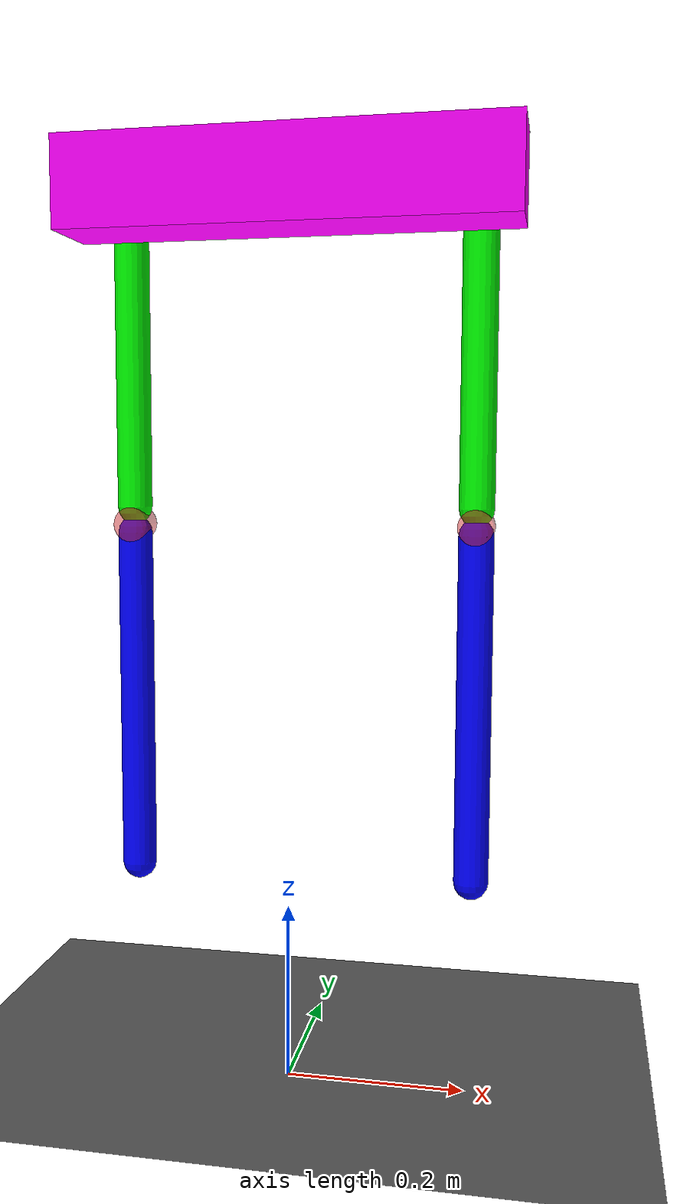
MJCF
<?xml version='1.0' encoding='UTF-8'?>
<mujoco>

    <option gravity="0 0 -9.81"/>

    <asset>
        <texture type="skybox" builtin="gradient" rgb1="1 1 1" rgb2="0.5 0.5 0.5" width="265" height="256"/>
        <texture name="grid" type="2d" builtin="checker" rgb1="0.1 0.1 0.1" rgb2="0.6 0.6 0.6" width="300" height="300"/>
        <material name="grid" texture="grid" texrepeat="10 10" reflectance="0.2"/>
        <material name="base" rgba="1 0 1 1" shininess="0.5" specular="1"/>
        <material name="link1" rgba="0 1 0 1" shininess="0.5" specular="1"/>
        <material name="link2" rgba="0 0 1 1" shininess="0.5" specular="1"/>
        <material name="joint_shape" rgba="0.89 0.14 0.16 0.5" shininess="0.5" specular="1"/>
    </asset>

    <worldbody>
        <light pos="0 0 10"/>
        <geom type="plane" size="10 10 0.1" material="grid" friction="1 0.1 0.1"/>

        <camera name="side view" pos="0.1 -1.5 1.0" euler="90 0 0" fovy="60"/>
        <camera name="upper view" pos="0 0 1.5" euler="0 0 0"/>

        <body name="base" pos="0 0 1">
            <joint name="slider" type="slide" axis="0 0 1" range="-1 5"/>
            <geom name="base" type="box" size="0.25 0.05 0.05" mass="0.5" material="base" contype="1" conaffinity="1"/>
            <site name="box_s"/>

            <body name="link1" pos="0.2 0.07  0">
                <joint name="A" type="hinge" axis="0 1 0"  range="-80 80" damping="0.1"/>
                <geom name="joint_shape1" type="cylinder" size="0.02 0.02" material="joint_shape" pos="0 0 0" euler="90 0 0" contype="0" />
                <geom name="link1" type="capsule" size="0.02 0.175" material="link1" pos="0 0  -0.175" contype="1" conaffinity="1"/>

                <body name="link2" pos="0 0 -0.37">

                    <joint name="B" type="hinge" axis="0 1 0" range="-60 60" damping="0.1"/>
                    <geom name="joint_shape2" type="cylinder" size="0.02 0.02" mass="0.0" material="joint_shape" euler="90 0 0" contype="1" conaffinity="1"/>
                    <geom name="link2" type="capsule" size="0.02 0.2" material="link2" pos="0 0 -0.21000000000000002" contype="1" conaffinity="1"/>

                    <site name="sc1" size="0.01" pos="0 0 -0.42000000000000004"/>
                </body>

            </body>

            <body name="link3" pos="-0.2 0.07  0">
                <joint name="C" type="hinge" axis="0 1 0" range="-80 80" damping="0.1"/>
                <geom name="joint_shape3" type="cylinder" size="0.02 0.02" mass="0.0" material="joint_shape" pos="0 0 0" euler="90 0 0" contype="1" conaffinity="1"/>
                <geom name="link3" type="capsule" size="0.02 0.175" material="link1" pos="0 0  -0.175" contype="1" conaffinity="1"/>

                <body name="link4" pos="0 0 -0.37">

                    <joint name="D" type="hinge" axis="0 1 0" range="-60 60" damping="0.1"/>
                    <geom name="joint_shape4" type="cylinder" size="0.02 0.02" material="joint_shape" euler="90 0 0" contype="1" conaffinity="1"/>
                    <geom name="link4" type="capsule" size="0.02 0.2" material="link2" pos="0 0 -0.21000000000000002" contype="1" conaffinity="1"/>
                    <site name="sc2" size="0.01" pos="0 0 -0.42000000000000004"/>

                </body>

            </body>
        </body>

    </worldbody>
    <!-- slider   A      B       C      D -->
    <keyframe>
        <key name="home" qpos="0.0   15.0  -30.0  15.0   0.0"/>
    </keyframe>

    <equality>

        <connect site1="sc1" site2="sc2"/>
    </equality>

    <sensor>

        <framepos objtype="site" objname="box_s"/>
        <framepos objtype="site" objname="sc1"/>

        <touch name="link2_contact" site="sc1"/>

        <framelinvel objtype="site" objname="sc1"/>

    </sensor>

    <actuator>
        <motor name="A" joint="A"/>
        <motor name="C" joint="C"/>

    </actuator>

</mujoco>
